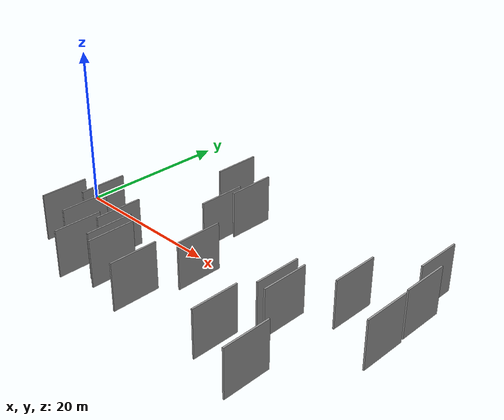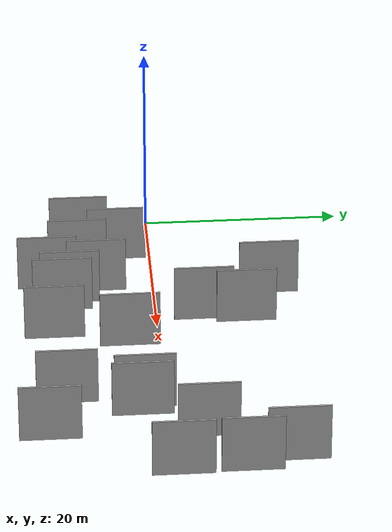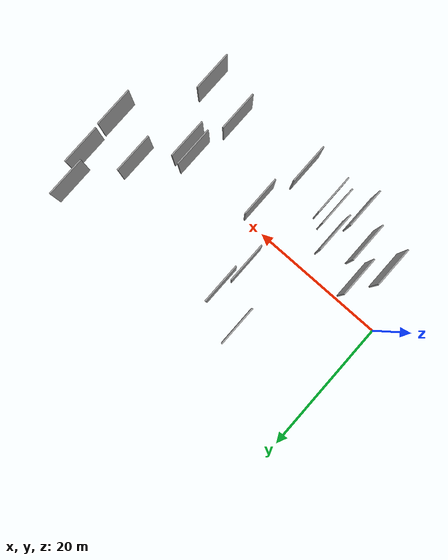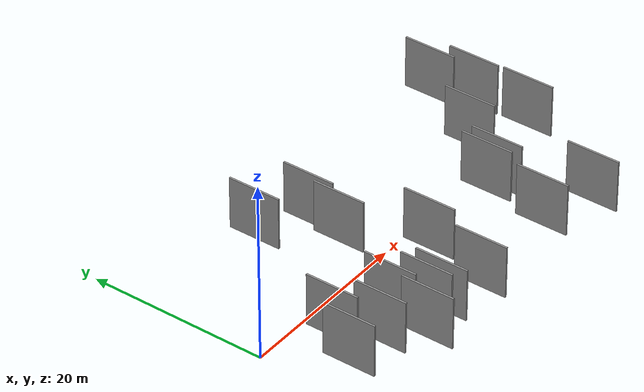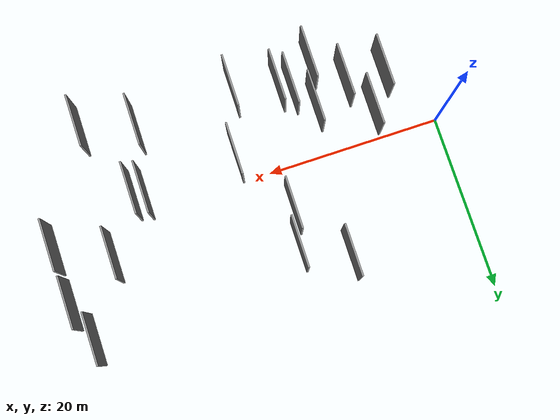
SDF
<sdf version="1.6">
 <world name="default">
  <scene>
   <sky><clouds><speed>12</speed></clouds></sky>
   <ambient>0.4 0.4 0.4 1</ambient>
   <background>0.7 0.7 0.7 1</background>
   <shadows>1</shadows>
  </scene>
  <gravity>0 0 -9.8066</gravity>
  <magnetic_field>6e-06 2.3e-05 -4.2e-05</magnetic_field>
  <physics default="0" name="default_physics" type="ode">
   <ode>
    <solver>
     <type>quick</type>
     <iters>10</iters>
     <sor>1.0</sor>
     <use_dynamic_moi_rescaling>0</use_dynamic_moi_rescaling>
    </solver>
    <constraints>
     <cfm>0</cfm>
     <erp>0.2</erp>
     <contact_max_correcting_vel>100</contact_max_correcting_vel>
     <contact_surface_layer>0.001</contact_surface_layer>
    </constraints>
   </ode>
   <max_step_size>0.004</max_step_size>
   <real_time_factor>1</real_time_factor>
   <real_time_update_rate>250</real_time_update_rate>
  </physics>
  <light name="sun" type="directional">
   <pose>0 0 10 0 0 0</pose>
   <diffuse>0.8 0.8 0.8 1</diffuse>
   <specular>0.2 0.2 0.2 1</specular>
   <attenuation>
    <range>1000</range>
    <constant>0.9</constant>
    <linear>0.01</linear>
    <quadratic>0.001</quadratic>
   </attenuation>
   <direction>-0.5 0.1 -0.9</direction>
  </light>
  <model name="grey_wall_1">
   <static>1</static>
   <pose>35.3472 -2.3064 0.0 0.000000 0.000000 1.570796</pose>
   <link name="link">
    <pose>0 0 3.00 0 0 0</pose>
    <collision name="collision"><geometry><box><size>6.00 0.2 6.00</size></box></geometry></collision>
    <visual name="visual">
     <cast_shadows>0</cast_shadows>
     <geometry><box><size>6.00 0.2 6.00</size></box></geometry>
     <material>
      <script>
       <uri>model://grey_wall/materials/scripts</uri>
       <uri>model://grey_wall/materials/textures</uri>
       <name>vrc/grey_wall</name>
      </script>
     </material>
    </visual>
   </link>
  </model>
  <model name="grey_wall_2">
   <static>1</static>
   <pose>34.0367 -1.9959 0.0 0.000000 0.000000 1.570796</pose>
   <link name="link">
    <pose>0 0 3.00 0 0 0</pose>
    <collision name="collision"><geometry><box><size>6.00 0.2 6.00</size></box></geometry></collision>
    <visual name="visual">
     <cast_shadows>0</cast_shadows>
     <geometry><box><size>6.00 0.2 6.00</size></box></geometry>
     <material>
      <script>
       <uri>model://grey_wall/materials/scripts</uri>
       <uri>model://grey_wall/materials/textures</uri>
       <name>vrc/grey_wall</name>
      </script>
     </material>
    </visual>
   </link>
  </model>
  <model name="grey_wall_3">
   <static>1</static>
   <pose>45.4234 0.9373 0.0 0.000000 0.000000 1.570796</pose>
   <link name="link">
    <pose>0 0 3.00 0 0 0</pose>
    <collision name="collision"><geometry><box><size>6.00 0.2 6.00</size></box></geometry></collision>
    <visual name="visual">
     <cast_shadows>0</cast_shadows>
     <geometry><box><size>6.00 0.2 6.00</size></box></geometry>
     <material>
      <script>
       <uri>model://grey_wall/materials/scripts</uri>
       <uri>model://grey_wall/materials/textures</uri>
       <name>vrc/grey_wall</name>
      </script>
     </material>
    </visual>
   </link>
  </model>
  <model name="grey_wall_4">
   <static>1</static>
   <pose>21.2194 -10.2965 0.0 0.000000 0.000000 1.570796</pose>
   <link name="link">
    <pose>0 0 3.00 0 0 0</pose>
    <collision name="collision"><geometry><box><size>6.00 0.2 6.00</size></box></geometry></collision>
    <visual name="visual">
     <cast_shadows>0</cast_shadows>
     <geometry><box><size>6.00 0.2 6.00</size></box></geometry>
     <material>
      <script>
       <uri>model://grey_wall/materials/scripts</uri>
       <uri>model://grey_wall/materials/textures</uri>
       <name>vrc/grey_wall</name>
      </script>
     </material>
    </visual>
   </link>
  </model>
  <model name="grey_wall_5">
   <static>1</static>
   <pose>39.3652 3.7793 0.0 0.000000 0.000000 1.570796</pose>
   <link name="link">
    <pose>0 0 3.00 0 0 0</pose>
    <collision name="collision"><geometry><box><size>6.00 0.2 6.00</size></box></geometry></collision>
    <visual name="visual">
     <cast_shadows>0</cast_shadows>
     <geometry><box><size>6.00 0.2 6.00</size></box></geometry>
     <material>
      <script>
       <uri>model://grey_wall/materials/scripts</uri>
       <uri>model://grey_wall/materials/textures</uri>
       <name>vrc/grey_wall</name>
      </script>
     </material>
    </visual>
   </link>
  </model>
  <model name="grey_wall_6">
   <static>1</static>
   <pose>18.7941 4.7931 0.0 0.000000 0.000000 1.570796</pose>
   <link name="link">
    <pose>0 0 3.00 0 0 0</pose>
    <collision name="collision"><geometry><box><size>6.00 0.2 6.00</size></box></geometry></collision>
    <visual name="visual">
     <cast_shadows>0</cast_shadows>
     <geometry><box><size>6.00 0.2 6.00</size></box></geometry>
     <material>
      <script>
       <uri>model://grey_wall/materials/scripts</uri>
       <uri>model://grey_wall/materials/textures</uri>
       <name>vrc/grey_wall</name>
      </script>
     </material>
    </visual>
   </link>
  </model>
  <model name="grey_wall_7">
   <static>1</static>
   <pose>14.7638 -8.5212 0.0 0.000000 0.000000 1.570796</pose>
   <link name="link">
    <pose>0 0 3.00 0 0 0</pose>
    <collision name="collision"><geometry><box><size>6.00 0.2 6.00</size></box></geometry></collision>
    <visual name="visual">
     <cast_shadows>0</cast_shadows>
     <geometry><box><size>6.00 0.2 6.00</size></box></geometry>
     <material>
      <script>
       <uri>model://grey_wall/materials/scripts</uri>
       <uri>model://grey_wall/materials/textures</uri>
       <name>vrc/grey_wall</name>
      </script>
     </material>
    </visual>
   </link>
  </model>
  <model name="grey_wall_8">
   <static>1</static>
   <pose>16.1042 -9.3140 0.0 0.000000 0.000000 1.570796</pose>
   <link name="link">
    <pose>0 0 3.00 0 0 0</pose>
    <collision name="collision"><geometry><box><size>6.00 0.2 6.00</size></box></geometry></collision>
    <visual name="visual">
     <cast_shadows>0</cast_shadows>
     <geometry><box><size>6.00 0.2 6.00</size></box></geometry>
     <material>
      <script>
       <uri>model://grey_wall/materials/scripts</uri>
       <uri>model://grey_wall/materials/textures</uri>
       <name>vrc/grey_wall</name>
      </script>
     </material>
    </visual>
   </link>
  </model>
  <model name="grey_wall_9">
   <static>1</static>
   <pose>45.2778 7.4596 0.0 0.000000 0.000000 1.570796</pose>
   <link name="link">
    <pose>0 0 3.00 0 0 0</pose>
    <collision name="collision"><geometry><box><size>6.00 0.2 6.00</size></box></geometry></collision>
    <visual name="visual">
     <cast_shadows>0</cast_shadows>
     <geometry><box><size>6.00 0.2 6.00</size></box></geometry>
     <material>
      <script>
       <uri>model://grey_wall/materials/scripts</uri>
       <uri>model://grey_wall/materials/textures</uri>
       <name>vrc/grey_wall</name>
      </script>
     </material>
    </visual>
   </link>
  </model>
  <model name="grey_wall_10">
   <static>1</static>
   <pose>23.1139 -2.8702 0.0 0.000000 0.000000 1.570796</pose>
   <link name="link">
    <pose>0 0 3.00 0 0 0</pose>
    <collision name="collision"><geometry><box><size>6.00 0.2 6.00</size></box></geometry></collision>
    <visual name="visual">
     <cast_shadows>0</cast_shadows>
     <geometry><box><size>6.00 0.2 6.00</size></box></geometry>
     <material>
      <script>
       <uri>model://grey_wall/materials/scripts</uri>
       <uri>model://grey_wall/materials/textures</uri>
       <name>vrc/grey_wall</name>
      </script>
     </material>
    </visual>
   </link>
  </model>
  <model name="grey_wall_11">
   <static>1</static>
   <pose>32.7756 -9.4854 0.0 0.000000 0.000000 1.570796</pose>
   <link name="link">
    <pose>0 0 3.00 0 0 0</pose>
    <collision name="collision"><geometry><box><size>6.00 0.2 6.00</size></box></geometry></collision>
    <visual name="visual">
     <cast_shadows>0</cast_shadows>
     <geometry><box><size>6.00 0.2 6.00</size></box></geometry>
     <material>
      <script>
       <uri>model://grey_wall/materials/scripts</uri>
       <uri>model://grey_wall/materials/textures</uri>
       <name>vrc/grey_wall</name>
      </script>
     </material>
    </visual>
   </link>
  </model>
  <model name="grey_wall_12">
   <static>1</static>
   <pose>4.2209 -7.2209 0.0 0.000000 0.000000 1.570796</pose>
   <link name="link">
    <pose>0 0 3.00 0 0 0</pose>
    <collision name="collision"><geometry><box><size>6.00 0.2 6.00</size></box></geometry></collision>
    <visual name="visual">
     <cast_shadows>0</cast_shadows>
     <geometry><box><size>6.00 0.2 6.00</size></box></geometry>
     <material>
      <script>
       <uri>model://grey_wall/materials/scripts</uri>
       <uri>model://grey_wall/materials/textures</uri>
       <name>vrc/grey_wall</name>
      </script>
     </material>
    </visual>
   </link>
  </model>
  <model name="grey_wall_13">
   <static>1</static>
   <pose>14.3306 11.6972 0.0 0.000000 0.000000 1.570796</pose>
   <link name="link">
    <pose>0 0 3.00 0 0 0</pose>
    <collision name="collision"><geometry><box><size>6.00 0.2 6.00</size></box></geometry></collision>
    <visual name="visual">
     <cast_shadows>0</cast_shadows>
     <geometry><box><size>6.00 0.2 6.00</size></box></geometry>
     <material>
      <script>
       <uri>model://grey_wall/materials/scripts</uri>
       <uri>model://grey_wall/materials/textures</uri>
       <name>vrc/grey_wall</name>
      </script>
     </material>
    </visual>
   </link>
  </model>
  <model name="grey_wall_14">
   <static>1</static>
   <pose>11.8856 -10.7155 0.0 0.000000 0.000000 1.570796</pose>
   <link name="link">
    <pose>0 0 3.00 0 0 0</pose>
    <collision name="collision"><geometry><box><size>6.00 0.2 6.00</size></box></geometry></collision>
    <visual name="visual">
     <cast_shadows>0</cast_shadows>
     <geometry><box><size>6.00 0.2 6.00</size></box></geometry>
     <material>
      <script>
       <uri>model://grey_wall/materials/scripts</uri>
       <uri>model://grey_wall/materials/textures</uri>
       <name>vrc/grey_wall</name>
      </script>
     </material>
    </visual>
   </link>
  </model>
  <model name="grey_wall_15">
   <static>1</static>
   <pose>6.7042 -3.4060 0.0 0.000000 0.000000 1.570796</pose>
   <link name="link">
    <pose>0 0 3.00 0 0 0</pose>
    <collision name="collision"><geometry><box><size>6.00 0.2 6.00</size></box></geometry></collision>
    <visual name="visual">
     <cast_shadows>0</cast_shadows>
     <geometry><box><size>6.00 0.2 6.00</size></box></geometry>
     <material>
      <script>
       <uri>model://grey_wall/materials/scripts</uri>
       <uri>model://grey_wall/materials/textures</uri>
       <name>vrc/grey_wall</name>
      </script>
     </material>
    </visual>
   </link>
  </model>
  <model name="grey_wall_16">
   <static>1</static>
   <pose>38.8877 -11.3032 0.0 0.000000 0.000000 1.570796</pose>
   <link name="link">
    <pose>0 0 3.00 0 0 0</pose>
    <collision name="collision"><geometry><box><size>6.00 0.2 6.00</size></box></geometry></collision>
    <visual name="visual">
     <cast_shadows>0</cast_shadows>
     <geometry><box><size>6.00 0.2 6.00</size></box></geometry>
     <material>
      <script>
       <uri>model://grey_wall/materials/scripts</uri>
       <uri>model://grey_wall/materials/textures</uri>
       <name>vrc/grey_wall</name>
      </script>
     </material>
    </visual>
   </link>
  </model>
  <model name="grey_wall_17">
   <static>1</static>
   <pose>8.7109 -7.5274 0.0 0.000000 0.000000 1.570796</pose>
   <link name="link">
    <pose>0 0 3.00 0 0 0</pose>
    <collision name="collision"><geometry><box><size>6.00 0.2 6.00</size></box></geometry></collision>
    <visual name="visual">
     <cast_shadows>0</cast_shadows>
     <geometry><box><size>6.00 0.2 6.00</size></box></geometry>
     <material>
      <script>
       <uri>model://grey_wall/materials/scripts</uri>
       <uri>model://grey_wall/materials/textures</uri>
       <name>vrc/grey_wall</name>
      </script>
     </material>
    </visual>
   </link>
  </model>
  <model name="grey_wall_18">
   <static>1</static>
   <pose>43.8720 11.9253 0.0 0.000000 0.000000 1.570796</pose>
   <link name="link">
    <pose>0 0 3.00 0 0 0</pose>
    <collision name="collision"><geometry><box><size>6.00 0.2 6.00</size></box></geometry></collision>
    <visual name="visual">
     <cast_shadows>0</cast_shadows>
     <geometry><box><size>6.00 0.2 6.00</size></box></geometry>
     <material>
      <script>
       <uri>model://grey_wall/materials/scripts</uri>
       <uri>model://grey_wall/materials/textures</uri>
       <name>vrc/grey_wall</name>
      </script>
     </material>
    </visual>
   </link>
  </model>
  <model name="grey_wall_19">
   <static>1</static>
   <pose>12.7504 -5.7486 0.0 0.000000 0.000000 1.570796</pose>
   <link name="link">
    <pose>0 0 3.00 0 0 0</pose>
    <collision name="collision"><geometry><box><size>6.00 0.2 6.00</size></box></geometry></collision>
    <visual name="visual">
     <cast_shadows>0</cast_shadows>
     <geometry><box><size>6.00 0.2 6.00</size></box></geometry>
     <material>
      <script>
       <uri>model://grey_wall/materials/scripts</uri>
       <uri>model://grey_wall/materials/textures</uri>
       <name>vrc/grey_wall</name>
      </script>
     </material>
    </visual>
   </link>
  </model>
  <model name="grey_wall_20">
   <static>1</static>
   <pose>19.4979 9.0149 0.0 0.000000 0.000000 1.570796</pose>
   <link name="link">
    <pose>0 0 3.00 0 0 0</pose>
    <collision name="collision"><geometry><box><size>6.00 0.2 6.00</size></box></geometry></collision>
    <visual name="visual">
     <cast_shadows>0</cast_shadows>
     <geometry><box><size>6.00 0.2 6.00</size></box></geometry>
     <material>
      <script>
       <uri>model://grey_wall/materials/scripts</uri>
       <uri>model://grey_wall/materials/textures</uri>
       <name>vrc/grey_wall</name>
      </script>
     </material>
    </visual>
   </link>
  </model>
 </world>
</sdf>
